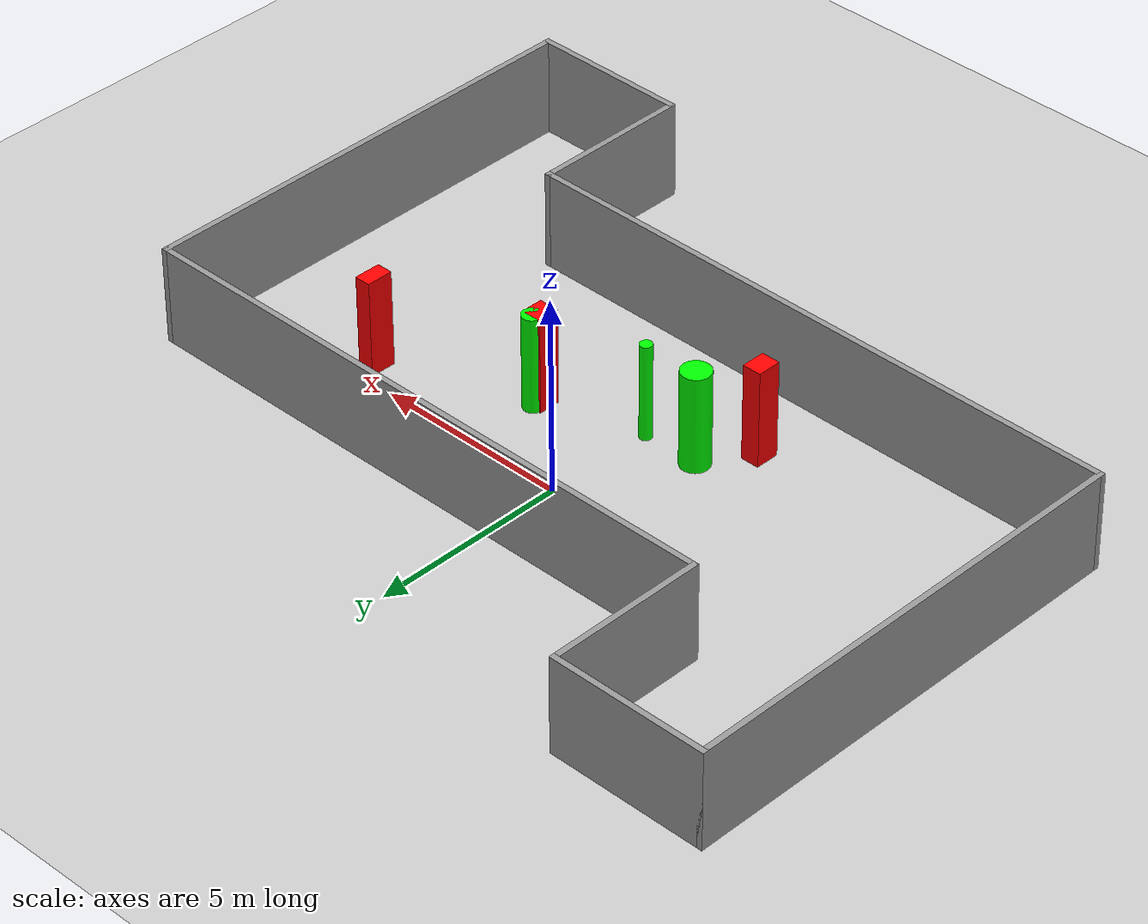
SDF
<sdf version="1.7">
 <world name="default">
  <light name="sun" type="directional">
   <pose>0 0 10 0 -0 0</pose>
   <diffuse>0.8 0.8 0.8 1</diffuse>
   <specular>0.2 0.2 0.2 1</specular>
   <attenuation>
    <range>1000</range>
    <constant>0.9</constant>
    <linear>0.01</linear>
    <quadratic>0.001</quadratic>
   </attenuation>
   <direction>-0.5 0.1 -0.9</direction>
   <spot><inner_angle>0</inner_angle><outer_angle>0</outer_angle><falloff>0</falloff></spot>
  </light>
  <model name="ground_plane">
   <static>1</static>
   <link name="link">
    <collision name="collision">
     <geometry><plane><normal>0 0 1</normal><size>100 100</size></plane></geometry>
     <surface>
      <contact><collide_bitmask>65535</collide_bitmask></contact>
      <friction><ode><mu>100</mu><mu2>50</mu2></ode></friction>
     </surface>
    </collision>
    <visual name="visual">
     <cast_shadows>0</cast_shadows>
     <geometry><plane><normal>0 0 1</normal><size>100 100</size></plane></geometry>
     <material>
      <script><uri>file://media/materials/scripts/gazebo.material</uri><name>Gazebo/Grey</name></script>
     </material>
    </visual>
   </link>
  </model>
  <gravity>0 0 -9.8</gravity>
  <magnetic_field>6e-06 2.3e-05 -4.2e-05</magnetic_field>
  <atmosphere type="adiabatic"/>
  <physics type="ode">
   <max_step_size>0.001</max_step_size>
   <real_time_factor>1</real_time_factor>
   <real_time_update_rate>1000</real_time_update_rate>
  </physics>
  <scene><ambient>0.4 0.4 0.4 1</ambient><background>0.7 0.7 0.7 1</background><shadows>1</shadows></scene>
  <spherical_coordinates>
   <surface_model>EARTH_WGS84</surface_model>
   <latitude_deg>0</latitude_deg>
   <longitude_deg>0</longitude_deg>
   <elevation>0</elevation>
   <heading_deg>0</heading_deg>
  </spherical_coordinates>
  <model name="my_base_walls">
   <link name="Wall_13">
    <collision name="Wall_13_Collision">
     <geometry><box><size>12.15 0.15 2.5</size></box></geometry>
     <pose>0 0 1.25 0 -0 0</pose>
    </collision>
    <visual name="Wall_13_Visual">
     <pose>0 0 1.25 0 -0 0</pose>
     <geometry><box><size>12.15 0.15 2.5</size></box></geometry>
     <material>
      <script><uri>file://media/materials/scripts/gazebo.material</uri><name>Gazebo/Grey</name></script>
      <ambient>1 1 1 1</ambient>
     </material>
     <meta><layer>0</layer></meta>
    </visual>
    <pose>10 -2 0 0 -0 1.5708</pose>
   </link>
   <link name="Wall_15">
    <collision name="Wall_15_Collision">
     <geometry><box><size>16.15 0.15 2.5</size></box></geometry>
     <pose>0 0 1.25 0 -0 0</pose>
    </collision>
    <visual name="Wall_15_Visual">
     <pose>0 0 1.25 0 -0 0</pose>
     <geometry><box><size>16.15 0.15 2.5</size></box></geometry>
     <material>
      <script><uri>file://media/materials/scripts/gazebo.material</uri><name>Gazebo/Grey</name></script>
      <ambient>1 1 1 1</ambient>
     </material>
     <meta><layer>0</layer></meta>
    </visual>
    <pose>2 4 0 0 -0 3.14159</pose>
   </link>
   <link name="Wall_17">
    <collision name="Wall_17_Collision">
     <geometry><box><size>4.15 0.15 2.5</size></box></geometry>
     <pose>0 0 1.25 0 -0 0</pose>
    </collision>
    <visual name="Wall_17_Visual">
     <pose>0 0 1.25 0 -0 0</pose>
     <geometry><box><size>4.15 0.15 2.5</size></box></geometry>
     <material>
      <script><uri>file://media/materials/scripts/gazebo.material</uri><name>Gazebo/Grey</name></script>
      <ambient>1 1 1 1</ambient>
     </material>
     <meta><layer>0</layer></meta>
    </visual>
    <pose>6 -6 0 0 -0 -1.5708</pose>
   </link>
   <link name="Wall_19">
    <collision name="Wall_19_Collision">
     <geometry><box><size>12.15 0.15 2.5</size></box></geometry>
     <pose>0 0 1.25 0 -0 0</pose>
    </collision>
    <visual name="Wall_19_Visual">
     <pose>0 0 1.25 0 -0 0</pose>
     <geometry><box><size>12.15 0.15 2.5</size></box></geometry>
     <material>
      <script><uri>file://media/materials/scripts/gazebo.material</uri><name>Gazebo/Grey</name></script>
      <ambient>1 1 1 1</ambient>
     </material>
     <meta><layer>0</layer></meta>
    </visual>
    <pose>-10 2 0 0 -0 1.5708</pose>
   </link>
   <link name="Wall_21">
    <collision name="Wall_21_Collision">
     <geometry><box><size>4.15 0.15 2.5</size></box></geometry>
     <pose>0 0 1.25 0 -0 0</pose>
    </collision>
    <visual name="Wall_21_Visual">
     <pose>0 0 1.25 0 -0 0</pose>
     <geometry><box><size>4.15 0.15 2.5</size></box></geometry>
     <material>
      <script><uri>file://media/materials/scripts/gazebo.material</uri><name>Gazebo/Grey</name></script>
      <ambient>1 1 1 1</ambient>
     </material>
     <meta><layer>0</layer></meta>
    </visual>
    <pose>-8 8 0 0 -0 0</pose>
   </link>
   <link name="Wall_23">
    <collision name="Wall_23_Collision">
     <geometry><box><size>4.15 0.15 2.5</size></box></geometry>
     <pose>0 0 1.25 0 -0 0</pose>
    </collision>
    <visual name="Wall_23_Visual">
     <pose>0 0 1.25 0 -0 0</pose>
     <geometry><box><size>4.15 0.15 2.5</size></box></geometry>
     <material>
      <script><uri>file://media/materials/scripts/gazebo.material</uri><name>Gazebo/Grey</name></script>
      <ambient>1 1 1 1</ambient>
     </material>
     <meta><layer>0</layer></meta>
    </visual>
    <pose>-6 6 0 0 -0 -1.5708</pose>
   </link>
   <link name="Wall_25">
    <collision name="Wall_25_Collision">
     <geometry><box><size>4.15 0.15 2.5</size></box></geometry>
     <pose>0 0 1.25 0 -0 0</pose>
    </collision>
    <visual name="Wall_25_Visual">
     <pose>0 0 1.25 0 -0 0</pose>
     <geometry><box><size>4.15 0.15 2.5</size></box></geometry>
     <material>
      <script><uri>file://media/materials/scripts/gazebo.material</uri><name>Gazebo/Grey</name></script>
      <ambient>1 1 1 1</ambient>
     </material>
     <meta><layer>0</layer></meta>
    </visual>
    <pose>8 -8 0 0 -0 0</pose>
   </link>
   <link name="Wall_9">
    <collision name="Wall_9_Collision">
     <geometry><box><size>16.15 0.15 2.5</size></box></geometry>
     <pose>0 0 1.25 0 -0 0</pose>
    </collision>
    <visual name="Wall_9_Visual">
     <pose>0 0 1.25 0 -0 0</pose>
     <geometry><box><size>16.15 0.15 2.5</size></box></geometry>
     <material>
      <script><uri>file://media/materials/scripts/gazebo.material</uri><name>Gazebo/Grey</name></script>
      <ambient>1 1 1 1</ambient>
     </material>
     <meta><layer>0</layer></meta>
    </visual>
    <pose>-2 -4 0 0 -0 3.14159</pose>
   </link>
   <static>1</static>
   <pose>-0 -2 0 0 -0 0</pose>
  </model>
  <model name="cylinder1">
   <static>1</static>
   <link name="link">
    <inertial>
     <mass>1</mass>
     <inertia><ixx>0.5</ixx><ixy>0</ixy><ixz>0</ixz><iyy>0.5</iyy><iyz>0</iyz><izz>1</izz></inertia>
    </inertial>
    <collision name="collision">
     <geometry><cylinder><radius>0.15501922712342728</radius><length>2.5</length></cylinder></geometry>
    </collision>
    <visual name="visual">
     <geometry><cylinder><radius>0.15501922712342728</radius><length>2.5</length></cylinder></geometry>
     <material>
      <ambient>0 1 0 1</ambient>
      <diffuse>0 1 0 1</diffuse>
      <specular>0.1 0.1 0.1 1</specular>
      <emissive>0 0 0 0</emissive>
     </material>
    </visual>
   </link>
   <pose>-0.10645865870043192 -2.777854317254759 1.25 0 0 0</pose>
  </model>
  <model name="cylinder2">
   <static>1</static>
   <link name="link">
    <inertial>
     <mass>1</mass>
     <inertia><ixx>0.5</ixx><ixy>0</ixy><ixz>0</ixz><iyy>0.5</iyy><iyz>0</iyz><izz>1</izz></inertia>
    </inertial>
    <collision name="collision">
     <geometry><cylinder><radius>0.36686034307056936</radius><length>2.5</length></cylinder></geometry>
    </collision>
    <visual name="visual">
     <geometry><cylinder><radius>0.36686034307056936</radius><length>2.5</length></cylinder></geometry>
     <material>
      <ambient>0 1 0 1</ambient>
      <diffuse>0 1 0 1</diffuse>
      <specular>0.1 0.1 0.1 1</specular>
      <emissive>0 0 0 0</emissive>
     </material>
    </visual>
   </link>
   <pose>-1.5358210170609485 -2.8250332599326864 1.25 0 0 0</pose>
  </model>
  <model name="cylinder3">
   <static>1</static>
   <link name="link">
    <inertial>
     <mass>1</mass>
     <inertia><ixx>0.5</ixx><ixy>0</ixy><ixz>0</ixz><iyy>0.5</iyy><iyz>0</iyz><izz>1</izz></inertia>
    </inertial>
    <collision name="collision">
     <geometry><cylinder><radius>0.25081867669932234</radius><length>2.5</length></cylinder></geometry>
    </collision>
    <visual name="visual">
     <geometry><cylinder><radius>0.25081867669932234</radius><length>2.5</length></cylinder></geometry>
     <material>
      <ambient>0 1 0 1</ambient>
      <diffuse>0 1 0 1</diffuse>
      <specular>0.1 0.1 0.1 1</specular>
      <emissive>0 0 0 0</emissive>
     </material>
    </visual>
   </link>
   <pose>2.4250676162837728 -1.8459856460382973 1.25 0 0 0</pose>
  </model>
  <model name="box1">
   <static>1</static>
   <link name="link">
    <inertial>
     <mass>1</mass>
     <inertia><ixx>0.083</ixx><ixy>0</ixy><ixz>0</ixz><iyy>0.083</iyy><iyz>0</iyz><izz>0.083</izz></inertia>
    </inertial>
    <collision name="collision">
     <geometry><box><size>0.5255591939089248 0.5670078665385527 2.5</size></box></geometry>
    </collision>
    <visual name="visual">
     <geometry><box><size>0.5255591939089248 0.5670078665385527 2.5</size></box></geometry>
     <material>
      <ambient>1 0 0 1</ambient>
      <diffuse>1 0 0 1</diffuse>
      <specular>0.1 0.1 0.1 1</specular>
      <emissive>0 0 0 0</emissive>
     </material>
    </visual>
    <sensor name="my_contact" type="contact">
     <contact><collision>box_collision</collision><topic>__default_topic__</topic></contact>
    </sensor>
   </link>
   <pose>2.400957153571923 -2.071107626658641 1.25 0 0 0</pose>
  </model>
  <model name="box2">
   <static>1</static>
   <link name="link">
    <inertial>
     <mass>1</mass>
     <inertia><ixx>0.083</ixx><ixy>0</ixy><ixz>0</ixz><iyy>0.083</iyy><iyz>0</iyz><izz>0.083</izz></inertia>
    </inertial>
    <collision name="collision">
     <geometry><box><size>0.40925610144117286 0.6811865781874632 2.5</size></box></geometry>
    </collision>
    <visual name="visual">
     <geometry><box><size>0.40925610144117286 0.6811865781874632 2.5</size></box></geometry>
     <material>
      <ambient>1 0 0 1</ambient>
      <diffuse>1 0 0 1</diffuse>
      <specular>0.1 0.1 0.1 1</specular>
      <emissive>0 0 0 0</emissive>
     </material>
    </visual>
    <sensor name="my_contact" type="contact">
     <contact><collision>box_collision</collision><topic>__default_topic__</topic></contact>
    </sensor>
   </link>
   <pose>5.986837309562269 -0.4951865570599372 1.25 0 0 0</pose>
  </model>
  <model name="box3">
   <static>1</static>
   <link name="link">
    <inertial>
     <mass>1</mass>
     <inertia><ixx>0.083</ixx><ixy>0</ixy><ixz>0</ixz><iyy>0.083</iyy><iyz>0</iyz><izz>0.083</izz></inertia>
    </inertial>
    <collision name="collision">
     <geometry><box><size>0.4822383491337348 0.6105073822622398 2.5</size></box></geometry>
    </collision>
    <visual name="visual">
     <geometry><box><size>0.4822383491337348 0.6105073822622398 2.5</size></box></geometry>
     <material>
      <ambient>1 0 0 1</ambient>
      <diffuse>1 0 0 1</diffuse>
      <specular>0.1 0.1 0.1 1</specular>
      <emissive>0 0 0 0</emissive>
     </material>
    </visual>
    <sensor name="my_contact" type="contact">
     <contact><collision>box_collision</collision><topic>__default_topic__</topic></contact>
    </sensor>
   </link>
   <pose>-2.369811629291302 -3.9660387229247984 1.25 0 0 0</pose>
  </model>
 </world>
</sdf>
